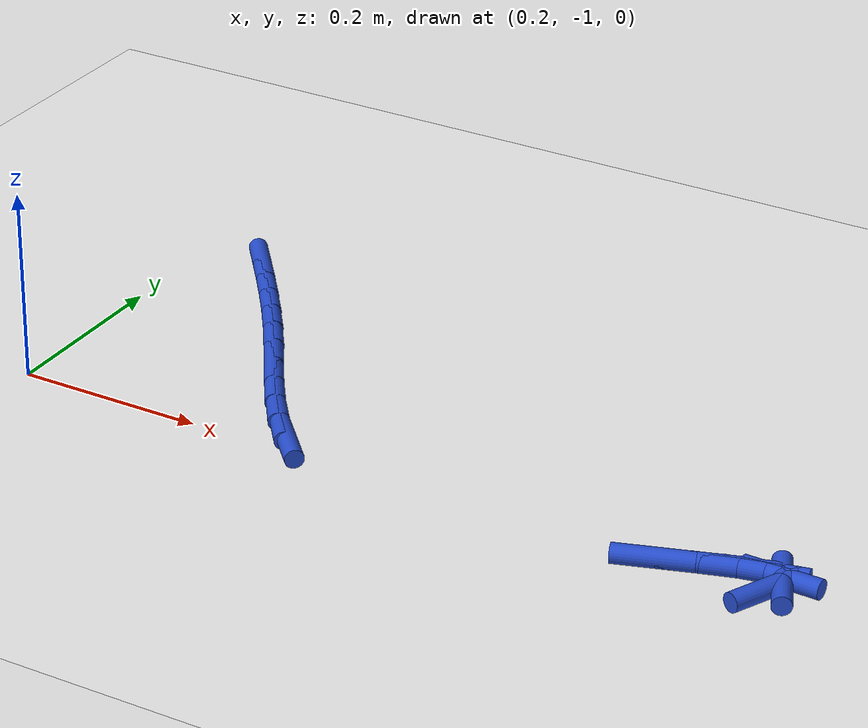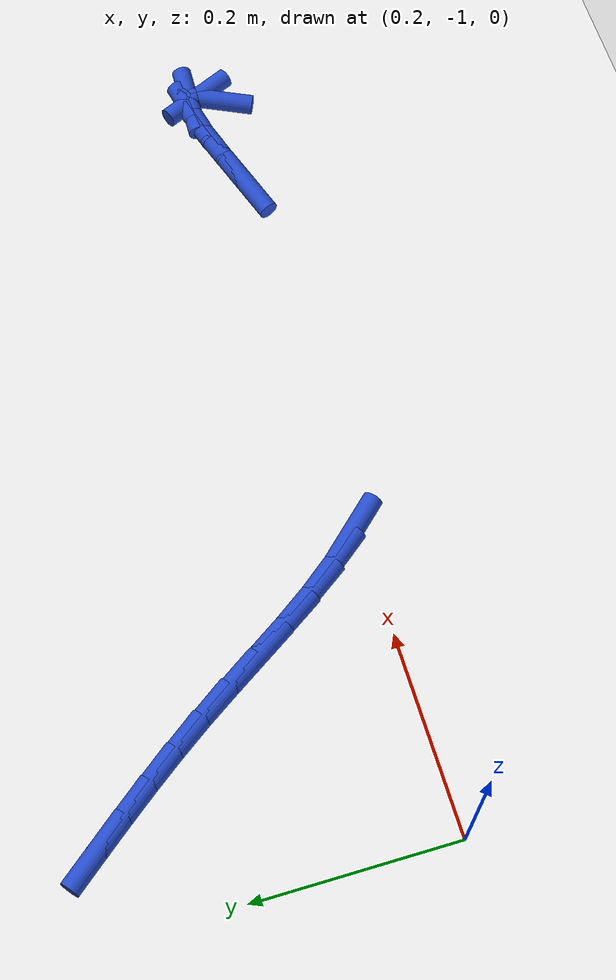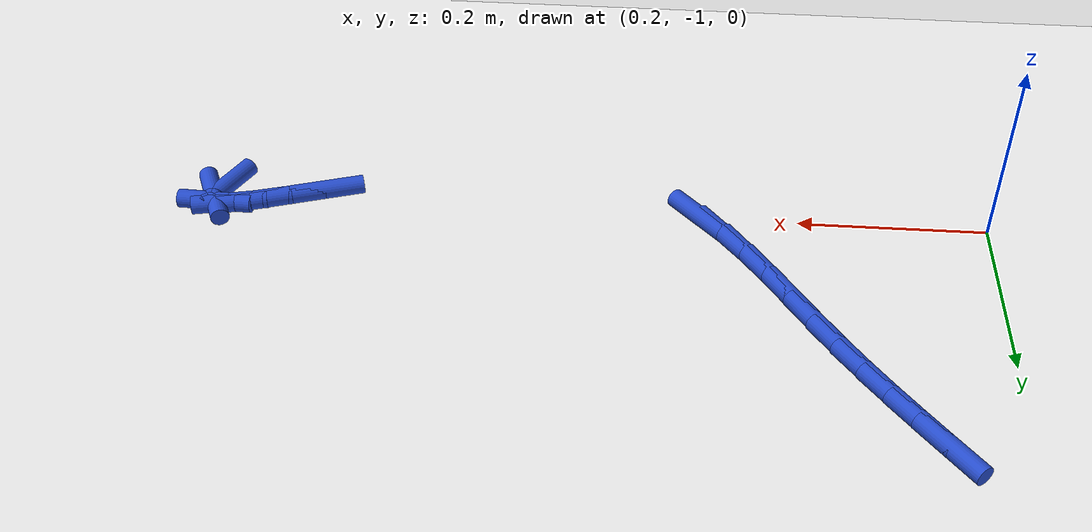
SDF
<sdf version="1.6">
 <world name="default">
  <model name="ground_plane">
   <static>1</static>
   <link name="link">
    <collision name="collision">
     <geometry><plane><normal>0 0 1</normal><size>100 100</size></plane></geometry>
     <surface><friction><ode><mu>100</mu><mu2>50</mu2></ode></friction></surface>
    </collision>
    <visual name="visual">
     <cast_shadows>0</cast_shadows>
     <geometry><plane><normal>0 0 1</normal><size>100 100</size></plane></geometry>
     <material>
      <script><uri>file://media/materials/scripts/gazebo.material</uri><name>Gazebo/WhiteGlow</name></script>
     </material>
    </visual>
   </link>
  </model>
  <model name="line">
   <link name="link_233">
    <pose>1.0202175574681034 -1.004718738941104 0.01 0 1.57 1.1324797497891066</pose>
    <collision name="collision">
     <geometry><cylinder><radius>0.01</radius><length>0.08</length></cylinder></geometry>
    </collision>
    <visual name="visual">
     <material>
      <script><name>Gazebo/Blue</name><uri>file://media/materials/scripts/gazebo.material</uri></script>
     </material>
     <geometry><cylinder><radius>0.01</radius><length>0.08</length></cylinder></geometry>
    </visual>
   </link>
   <link name="link_234">
    <pose>1.0286615797813676 -0.9867038879625356 0.01 0 1.57 -1.139532975273286</pose>
    <collision name="collision">
     <geometry><cylinder><radius>0.01</radius><length>0.08</length></cylinder></geometry>
    </collision>
    <visual name="visual">
     <material>
      <script><name>Gazebo/Blue</name><uri>file://media/materials/scripts/gazebo.material</uri></script>
     </material>
     <geometry><cylinder><radius>0.01</radius><length>0.08</length></cylinder></geometry>
    </visual>
   </link>
   <link name="link_235">
    <pose>1.0246194920492304 -0.9779196240026242 0.01 0 1.57 -0.04376854030620967</pose>
    <collision name="collision">
     <geometry><cylinder><radius>0.01</radius><length>0.08</length></cylinder></geometry>
    </collision>
    <visual name="visual">
     <material>
      <script><name>Gazebo/Blue</name><uri>file://media/materials/scripts/gazebo.material</uri></script>
     </material>
     <geometry><cylinder><radius>0.01</radius><length>0.08</length></cylinder></geometry>
    </visual>
   </link>
   <link name="link_236">
    <pose>1.008840917899613 -0.9772285775117888 0.01 0 1.57 0.21934913433932193</pose>
    <collision name="collision">
     <geometry><cylinder><radius>0.01</radius><length>0.08</length></cylinder></geometry>
    </collision>
    <visual name="visual">
     <material>
      <script><name>Gazebo/Blue</name><uri>file://media/materials/scripts/gazebo.material</uri></script>
     </material>
     <geometry><cylinder><radius>0.01</radius><length>0.08</length></cylinder></geometry>
    </visual>
   </link>
   <link name="link_237">
    <pose>0.9831095310379289 -0.9829650327588022 0.01 0 1.57 0.300311718463315</pose>
    <collision name="collision">
     <geometry><cylinder><radius>0.01</radius><length>0.08</length></cylinder></geometry>
    </collision>
    <visual name="visual">
     <material>
      <script><name>Gazebo/Blue</name><uri>file://media/materials/scripts/gazebo.material</uri></script>
     </material>
     <geometry><cylinder><radius>0.01</radius><length>0.08</length></cylinder></geometry>
    </visual>
   </link>
   <link name="link_238">
    <pose>0.949209005169593 -0.993463274012437 0.01 0 1.57 0.32544659537134785</pose>
    <collision name="collision">
     <geometry><cylinder><radius>0.01</radius><length>0.08</length></cylinder></geometry>
    </collision>
    <visual name="visual">
     <material>
      <script><name>Gazebo/Blue</name><uri>file://media/materials/scripts/gazebo.material</uri></script>
     </material>
     <geometry><cylinder><radius>0.01</radius><length>0.08</length></cylinder></geometry>
    </visual>
   </link>
   <link name="link_239">
    <pose>0.9089230140000194 -1.0070575855414656 0.01 0 1.57 0.32299457756649647</pose>
    <collision name="collision">
     <geometry><cylinder><radius>0.01</radius><length>0.08</length></cylinder></geometry>
    </collision>
    <visual name="visual">
     <material>
      <script><name>Gazebo/Blue</name><uri>file://media/materials/scripts/gazebo.material</uri></script>
     </material>
     <geometry><cylinder><radius>0.01</radius><length>0.08</length></cylinder></geometry>
    </visual>
   </link>
   <link name="link_249">
    <pose>0.5043214279093233 -0.9930843360232897 0.01 0 1.57 -0.8227807839935981</pose>
    <collision name="collision">
     <geometry><cylinder><radius>0.01</radius><length>0.08</length></cylinder></geometry>
    </collision>
    <visual name="visual">
     <material>
      <script><name>Gazebo/Blue</name><uri>file://media/materials/scripts/gazebo.material</uri></script>
     </material>
     <geometry><cylinder><radius>0.01</radius><length>0.08</length></cylinder></geometry>
    </visual>
   </link>
   <link name="link_250">
    <pose>0.4790116928127292 -0.9658078748780918 0.01 0 1.57 -0.9027534500267201</pose>
    <collision name="collision">
     <geometry><cylinder><radius>0.01</radius><length>0.08</length></cylinder></geometry>
    </collision>
    <visual name="visual">
     <material>
      <script><name>Gazebo/Blue</name><uri>file://media/materials/scripts/gazebo.material</uri></script>
     </material>
     <geometry><cylinder><radius>0.01</radius><length>0.08</length></cylinder></geometry>
    </visual>
   </link>
   <link name="link_251">
    <pose>0.45544301930732467 -0.9359390834778828 0.01 0 1.57 -0.9570420597441116</pose>
    <collision name="collision">
     <geometry><cylinder><radius>0.01</radius><length>0.08</length></cylinder></geometry>
    </collision>
    <visual name="visual">
     <material>
      <script><name>Gazebo/Blue</name><uri>file://media/materials/scripts/gazebo.material</uri></script>
     </material>
     <geometry><cylinder><radius>0.01</radius><length>0.08</length></cylinder></geometry>
    </visual>
   </link>
   <link name="link_252">
    <pose>0.43312525872324414 -0.9042611970994022 0.01 0 1.57 -0.9880087721489843</pose>
    <collision name="collision">
     <geometry><cylinder><radius>0.01</radius><length>0.08</length></cylinder></geometry>
    </collision>
    <visual name="visual">
     <material>
      <script><name>Gazebo/Blue</name><uri>file://media/materials/scripts/gazebo.material</uri></script>
     </material>
     <geometry><cylinder><radius>0.01</radius><length>0.08</length></cylinder></geometry>
    </visual>
   </link>
   <link name="link_253">
    <pose>0.41156826239062455 -0.871557451019394 0.01 0 1.57 -0.9971734110707862</pose>
    <collision name="collision">
     <geometry><cylinder><radius>0.01</radius><length>0.08</length></cylinder></geometry>
    </collision>
    <visual name="visual">
     <material>
      <script><name>Gazebo/Blue</name><uri>file://media/materials/scripts/gazebo.material</uri></script>
     </material>
     <geometry><cylinder><radius>0.01</radius><length>0.08</length></cylinder></geometry>
    </visual>
   </link>
   <link name="link_254">
    <pose>0.3902818816396006 -0.8386110805145984 0.01 0 1.57 -0.9849080047279186</pose>
    <collision name="collision">
     <geometry><cylinder><radius>0.01</radius><length>0.08</length></cylinder></geometry>
    </collision>
    <visual name="visual">
     <material>
      <script><name>Gazebo/Blue</name><uri>file://media/materials/scripts/gazebo.material</uri></script>
     </material>
     <geometry><cylinder><radius>0.01</radius><length>0.08</length></cylinder></geometry>
    </visual>
   </link>
   <link name="link_255">
    <pose>0.3687764216966128 -0.8062046473011432 0.01 0 1.57 -0.9576589222258773</pose>
    <collision name="collision">
     <geometry><cylinder><radius>0.01</radius><length>0.08</length></cylinder></geometry>
    </collision>
    <visual name="visual">
     <material>
      <script><name>Gazebo/Blue</name><uri>file://media/materials/scripts/gazebo.material</uri></script>
     </material>
     <geometry><cylinder><radius>0.01</radius><length>0.08</length></cylinder></geometry>
    </visual>
   </link>
   <link name="link_256">
    <pose>0.3467302830836524 -0.7748712676403413 0.01 0 1.57 -0.9330462569067712</pose>
    <collision name="collision">
     <geometry><cylinder><radius>0.01</radius><length>0.08</length></cylinder></geometry>
    </collision>
    <visual name="visual">
     <material>
      <script><name>Gazebo/Blue</name><uri>file://media/materials/scripts/gazebo.material</uri></script>
     </material>
     <geometry><cylinder><radius>0.01</radius><length>0.08</length></cylinder></geometry>
    </visual>
   </link>
   <link name="link_257">
    <pose>0.3242404971881382 -0.7445228294225122 0.01 0 1.57 -0.9141638645182824</pose>
    <collision name="collision">
     <geometry><cylinder><radius>0.01</radius><length>0.08</length></cylinder></geometry>
    </collision>
    <visual name="visual">
     <material>
      <script><name>Gazebo/Blue</name><uri>file://media/materials/scripts/gazebo.material</uri></script>
     </material>
     <geometry><cylinder><radius>0.01</radius><length>0.08</length></cylinder></geometry>
    </visual>
   </link>
   <link name="link_258">
    <pose>0.3014681751363667 -0.7149761292413601 0.01 0 1.57 -0.9013213964610084</pose>
    <collision name="collision">
     <geometry><cylinder><radius>0.01</radius><length>0.08</length></cylinder></geometry>
    </collision>
    <visual name="visual">
     <material>
      <script><name>Gazebo/Blue</name><uri>file://media/materials/scripts/gazebo.material</uri></script>
     </material>
     <geometry><cylinder><radius>0.01</radius><length>0.08</length></cylinder></geometry>
    </visual>
   </link>
   <link name="link_259">
    <pose>0.2785744280546344 -0.6860479636905885 0.01 0 1.57 -0.8947770926003812</pose>
    <collision name="collision">
     <geometry><cylinder><radius>0.01</radius><length>0.08</length></cylinder></geometry>
    </collision>
    <visual name="visual">
     <material>
      <script><name>Gazebo/Blue</name><uri>file://media/materials/scripts/gazebo.material</uri></script>
     </material>
     <geometry><cylinder><radius>0.01</radius><length>0.08</length></cylinder></geometry>
    </visual>
   </link>
  </model>
 </world>
</sdf>
